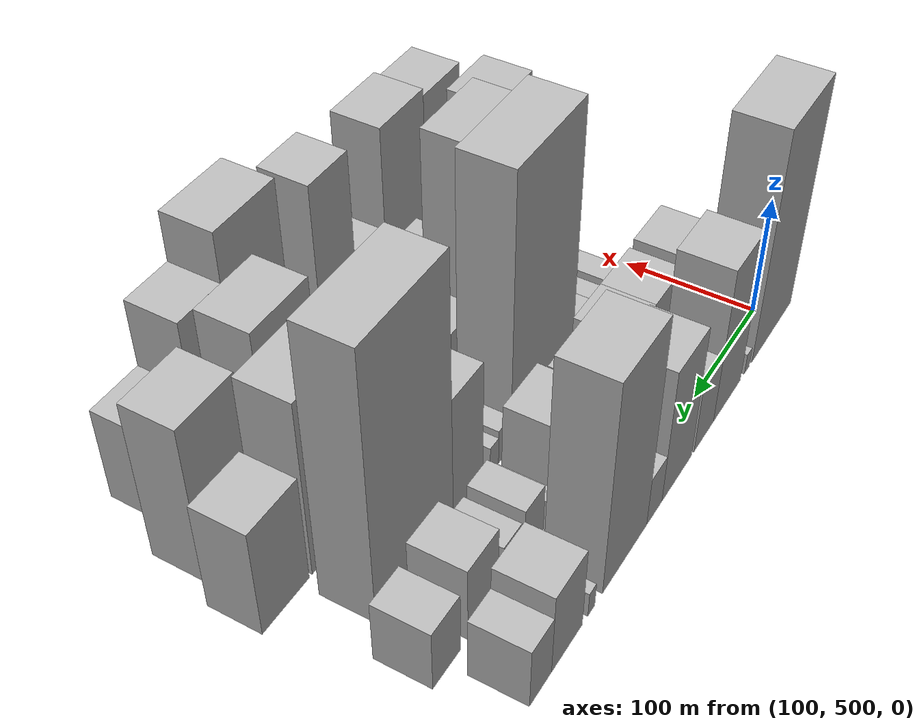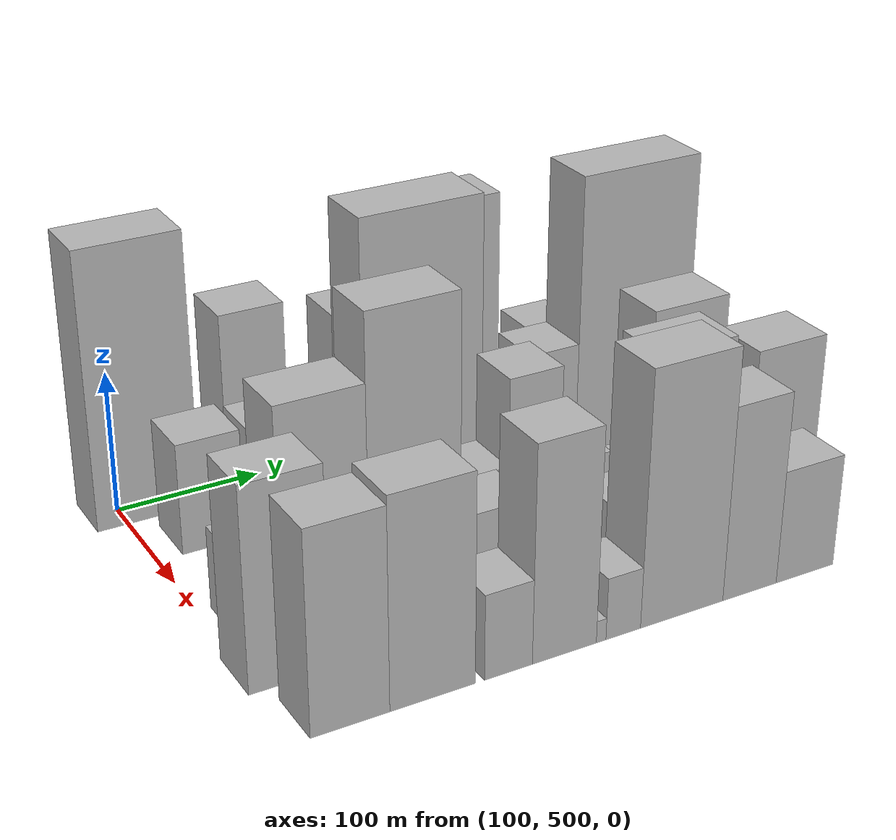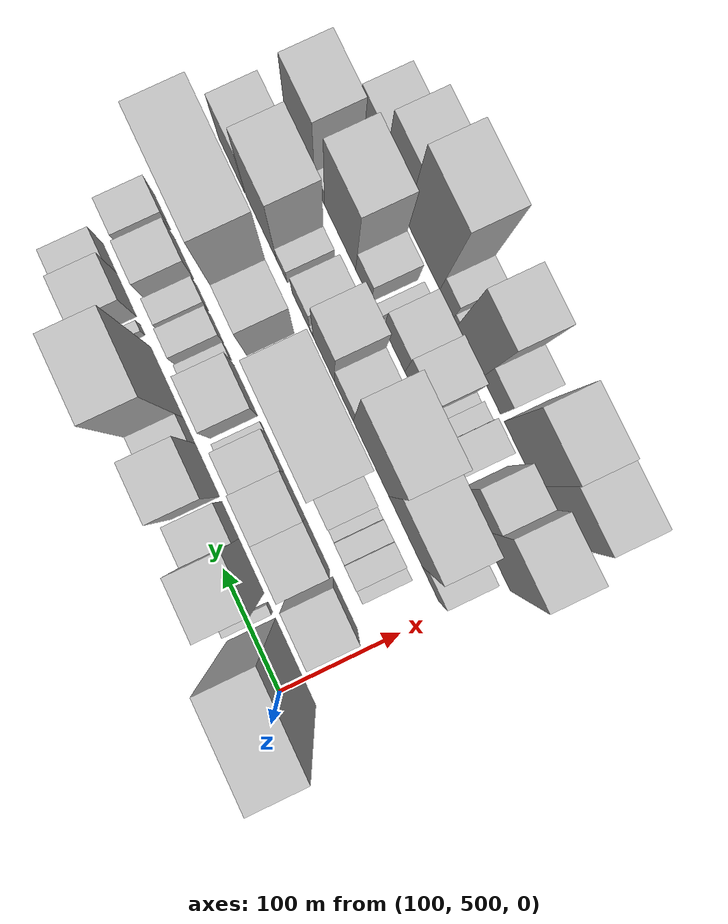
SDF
<sdf version="1.6">
 <world name="default">
  <model name="building_40">
   <static>1</static>
   <pose>100.0000 514.5314 0 0.000000 0.000000 0.000000</pose>
   <link name="link">
    <pose>0 0 97.50 0 0 0</pose>
    <collision name="collision"><geometry><box><size>40.0000 71.0415 195.0000</size></box></geometry></collision>
    <visual name="visual">
     <cast_shadows>0</cast_shadows>
     <geometry><box><size>40.0000 71.0415 195.0000</size></box></geometry>
     <material>
      <script>
       <uri>model://HANNAS_wall/materials/scripts</uri>
       <uri>model://HANNAS_wall/materials/textures</uri>
       <name>vrc/HANNAS_wall</name>
      </script>
     </material>
    </visual>
   </link>
  </model>
  <model name="building_41">
   <static>1</static>
   <pose>100.0000 559.1861 0 0.000000 0.000000 0.000000</pose>
   <link name="link">
    <pose>0 0 9.00 0 0 0</pose>
    <collision name="collision"><geometry><box><size>40.0000 8.2679 18.0000</size></box></geometry></collision>
    <visual name="visual">
     <cast_shadows>0</cast_shadows>
     <geometry><box><size>40.0000 8.2679 18.0000</size></box></geometry>
     <material>
      <script>
       <uri>model://HANNAS_wall/materials/scripts</uri>
       <uri>model://HANNAS_wall/materials/textures</uri>
       <name>vrc/HANNAS_wall</name>
      </script>
     </material>
    </visual>
   </link>
  </model>
  <model name="building_42">
   <static>1</static>
   <pose>100.0000 592.8223 0 0.000000 0.000000 0.000000</pose>
   <link name="link">
    <pose>0 0 66.00 0 0 0</pose>
    <collision name="collision"><geometry><box><size>40.0000 45.0046 132.0000</size></box></geometry></collision>
    <visual name="visual">
     <cast_shadows>0</cast_shadows>
     <geometry><box><size>40.0000 45.0046 132.0000</size></box></geometry>
     <material>
      <script>
       <uri>model://HANNAS_wall/materials/scripts</uri>
       <uri>model://HANNAS_wall/materials/textures</uri>
       <name>vrc/HANNAS_wall</name>
      </script>
     </material>
    </visual>
   </link>
  </model>
  <model name="building_43">
   <static>1</static>
   <pose>100.0000 630.7465 0 0.000000 0.000000 0.000000</pose>
   <link name="link">
    <pose>0 0 30.00 0 0 0</pose>
    <collision name="collision"><geometry><box><size>40.0000 30.8438 60.0000</size></box></geometry></collision>
    <visual name="visual">
     <cast_shadows>0</cast_shadows>
     <geometry><box><size>40.0000 30.8438 60.0000</size></box></geometry>
     <material>
      <script>
       <uri>model://HANNAS_wall/materials/scripts</uri>
       <uri>model://HANNAS_wall/materials/textures</uri>
       <name>vrc/HANNAS_wall</name>
      </script>
     </material>
    </visual>
   </link>
  </model>
  <model name="building_44">
   <static>1</static>
   <pose>100.0000 672.4647 0 0.000000 0.000000 0.000000</pose>
   <link name="link">
    <pose>0 0 57.00 0 0 0</pose>
    <collision name="collision"><geometry><box><size>40.0000 44.5925 114.0000</size></box></geometry></collision>
    <visual name="visual">
     <cast_shadows>0</cast_shadows>
     <geometry><box><size>40.0000 44.5925 114.0000</size></box></geometry>
     <material>
      <script>
       <uri>model://HANNAS_wall/materials/scripts</uri>
       <uri>model://HANNAS_wall/materials/textures</uri>
       <name>vrc/HANNAS_wall</name>
      </script>
     </material>
    </visual>
   </link>
  </model>
  <model name="building_45">
   <static>1</static>
   <pose>100.0000 705.6764 0 0.000000 0.000000 0.000000</pose>
   <link name="link">
    <pose>0 0 21.00 0 0 0</pose>
    <collision name="collision"><geometry><box><size>40.0000 21.8309 42.0000</size></box></geometry></collision>
    <visual name="visual">
     <cast_shadows>0</cast_shadows>
     <geometry><box><size>40.0000 21.8309 42.0000</size></box></geometry>
     <material>
      <script>
       <uri>model://HANNAS_wall/materials/scripts</uri>
       <uri>model://HANNAS_wall/materials/textures</uri>
       <name>vrc/HANNAS_wall</name>
      </script>
     </material>
    </visual>
   </link>
  </model>
  <model name="building_46">
   <static>1</static>
   <pose>100.0000 746.6059 0 0.000000 0.000000 0.000000</pose>
   <link name="link">
    <pose>0 0 88.50 0 0 0</pose>
    <collision name="collision"><geometry><box><size>40.0000 60.0282 177.0000</size></box></geometry></collision>
    <visual name="visual">
     <cast_shadows>0</cast_shadows>
     <geometry><box><size>40.0000 60.0282 177.0000</size></box></geometry>
     <material>
      <script>
       <uri>model://HANNAS_wall/materials/scripts</uri>
       <uri>model://HANNAS_wall/materials/textures</uri>
       <name>vrc/HANNAS_wall</name>
      </script>
     </material>
    </visual>
   </link>
  </model>
  <model name="building_47">
   <static>1</static>
   <pose>100.0000 791.1034 0 0.000000 0.000000 0.000000</pose>
   <link name="link">
    <pose>0 0 10.50 0 0 0</pose>
    <collision name="collision"><geometry><box><size>40.0000 8.9667 21.0000</size></box></geometry></collision>
    <visual name="visual">
     <cast_shadows>0</cast_shadows>
     <geometry><box><size>40.0000 8.9667 21.0000</size></box></geometry>
     <material>
      <script>
       <uri>model://HANNAS_wall/materials/scripts</uri>
       <uri>model://HANNAS_wall/materials/textures</uri>
       <name>vrc/HANNAS_wall</name>
      </script>
     </material>
    </visual>
   </link>
  </model>
  <model name="building_48">
   <static>1</static>
   <pose>100.0000 821.3512 0 0.000000 0.000000 0.000000</pose>
   <link name="link">
    <pose>0 0 34.50 0 0 0</pose>
    <collision name="collision"><geometry><box><size>40.0000 37.5289 69.0000</size></box></geometry></collision>
    <visual name="visual">
     <cast_shadows>0</cast_shadows>
     <geometry><box><size>40.0000 37.5289 69.0000</size></box></geometry>
     <material>
      <script>
       <uri>model://HANNAS_wall/materials/scripts</uri>
       <uri>model://HANNAS_wall/materials/textures</uri>
       <name>vrc/HANNAS_wall</name>
      </script>
     </material>
    </visual>
   </link>
  </model>
  <model name="building_49">
   <static>1</static>
   <pose>100.0000 852.9213 0 0.000000 0.000000 0.000000</pose>
   <link name="link">
    <pose>0 0 25.50 0 0 0</pose>
    <collision name="collision"><geometry><box><size>40.0000 25.6114 51.0000</size></box></geometry></collision>
    <visual name="visual">
     <cast_shadows>0</cast_shadows>
     <geometry><box><size>40.0000 25.6114 51.0000</size></box></geometry>
     <material>
      <script>
       <uri>model://HANNAS_wall/materials/scripts</uri>
       <uri>model://HANNAS_wall/materials/textures</uri>
       <name>vrc/HANNAS_wall</name>
      </script>
     </material>
    </visual>
   </link>
  </model>
  <model name="building_89">
   <static>1</static>
   <pose>152.0000 537.9058 0 0.000000 0.000000 0.000000</pose>
   <link name="link">
    <pose>0 0 39.00 0 0 0</pose>
    <collision name="collision"><geometry><box><size>40.0000 42.7568 78.0000</size></box></geometry></collision>
    <visual name="visual">
     <cast_shadows>0</cast_shadows>
     <geometry><box><size>40.0000 42.7568 78.0000</size></box></geometry>
     <material>
      <script>
       <uri>model://HANNAS_wall/materials/scripts</uri>
       <uri>model://HANNAS_wall/materials/textures</uri>
       <name>vrc/HANNAS_wall</name>
      </script>
     </material>
    </visual>
   </link>
  </model>
  <model name="building_90">
   <static>1</static>
   <pose>152.0000 586.5328 0 0.000000 0.000000 0.000000</pose>
   <link name="link">
    <pose>0 0 37.50 0 0 0</pose>
    <collision name="collision"><geometry><box><size>40.0000 42.4972 75.0000</size></box></geometry></collision>
    <visual name="visual">
     <cast_shadows>0</cast_shadows>
     <geometry><box><size>40.0000 42.4972 75.0000</size></box></geometry>
     <material>
      <script>
       <uri>model://HANNAS_wall/materials/scripts</uri>
       <uri>model://HANNAS_wall/materials/textures</uri>
       <name>vrc/HANNAS_wall</name>
      </script>
     </material>
    </visual>
   </link>
  </model>
  <model name="building_91">
   <static>1</static>
   <pose>152.0000 626.8800 0 0.000000 0.000000 0.000000</pose>
   <link name="link">
    <pose>0 0 37.50 0 0 0</pose>
    <collision name="collision"><geometry><box><size>40.0000 38.1972 75.0000</size></box></geometry></collision>
    <visual name="visual">
     <cast_shadows>0</cast_shadows>
     <geometry><box><size>40.0000 38.1972 75.0000</size></box></geometry>
     <material>
      <script>
       <uri>model://HANNAS_wall/materials/scripts</uri>
       <uri>model://HANNAS_wall/materials/textures</uri>
       <name>vrc/HANNAS_wall</name>
      </script>
     </material>
    </visual>
   </link>
  </model>
  <model name="building_92">
   <static>1</static>
   <pose>152.0000 662.4352 0 0.000000 0.000000 0.000000</pose>
   <link name="link">
    <pose>0 0 30.00 0 0 0</pose>
    <collision name="collision"><geometry><box><size>40.0000 32.9131 60.0000</size></box></geometry></collision>
    <visual name="visual">
     <cast_shadows>0</cast_shadows>
     <geometry><box><size>40.0000 32.9131 60.0000</size></box></geometry>
     <material>
      <script>
       <uri>model://HANNAS_wall/materials/scripts</uri>
       <uri>model://HANNAS_wall/materials/textures</uri>
       <name>vrc/HANNAS_wall</name>
      </script>
     </material>
    </visual>
   </link>
  </model>
  <model name="building_93">
   <static>1</static>
   <pose>152.0000 683.1166 0 0.000000 0.000000 0.000000</pose>
   <link name="link">
    <pose>0 0 9.00 0 0 0</pose>
    <collision name="collision"><geometry><box><size>40.0000 8.4497 18.0000</size></box></geometry></collision>
    <visual name="visual">
     <cast_shadows>0</cast_shadows>
     <geometry><box><size>40.0000 8.4497 18.0000</size></box></geometry>
     <material>
      <script>
       <uri>model://HANNAS_wall/materials/scripts</uri>
       <uri>model://HANNAS_wall/materials/textures</uri>
       <name>vrc/HANNAS_wall</name>
      </script>
     </material>
    </visual>
   </link>
  </model>
  <model name="building_94">
   <static>1</static>
   <pose>152.0000 714.8985 0 0.000000 0.000000 0.000000</pose>
   <link name="link">
    <pose>0 0 37.50 0 0 0</pose>
    <collision name="collision"><geometry><box><size>40.0000 43.1142 75.0000</size></box></geometry></collision>
    <visual name="visual">
     <cast_shadows>0</cast_shadows>
     <geometry><box><size>40.0000 43.1142 75.0000</size></box></geometry>
     <material>
      <script>
       <uri>model://HANNAS_wall/materials/scripts</uri>
       <uri>model://HANNAS_wall/materials/textures</uri>
       <name>vrc/HANNAS_wall</name>
      </script>
     </material>
    </visual>
   </link>
  </model>
  <model name="building_95">
   <static>1</static>
   <pose>152.0000 746.1056 0 0.000000 0.000000 0.000000</pose>
   <link name="link">
    <pose>0 0 13.50 0 0 0</pose>
    <collision name="collision"><geometry><box><size>40.0000 11.3001 27.0000</size></box></geometry></collision>
    <visual name="visual">
     <cast_shadows>0</cast_shadows>
     <geometry><box><size>40.0000 11.3001 27.0000</size></box></geometry>
     <material>
      <script>
       <uri>model://HANNAS_wall/materials/scripts</uri>
       <uri>model://HANNAS_wall/materials/textures</uri>
       <name>vrc/HANNAS_wall</name>
      </script>
     </material>
    </visual>
   </link>
  </model>
  <model name="building_96">
   <static>1</static>
   <pose>152.0000 766.6454 0 0.000000 0.000000 0.000000</pose>
   <link name="link">
    <pose>0 0 22.50 0 0 0</pose>
    <collision name="collision"><geometry><box><size>40.0000 23.7794 45.0000</size></box></geometry></collision>
    <visual name="visual">
     <cast_shadows>0</cast_shadows>
     <geometry><box><size>40.0000 23.7794 45.0000</size></box></geometry>
     <material>
      <script>
       <uri>model://HANNAS_wall/materials/scripts</uri>
       <uri>model://HANNAS_wall/materials/textures</uri>
       <name>vrc/HANNAS_wall</name>
      </script>
     </material>
    </visual>
   </link>
  </model>
  <model name="building_97">
   <static>1</static>
   <pose>152.0000 793.3147 0 0.000000 0.000000 0.000000</pose>
   <link name="link">
    <pose>0 0 19.50 0 0 0</pose>
    <collision name="collision"><geometry><box><size>40.0000 21.5594 39.0000</size></box></geometry></collision>
    <visual name="visual">
     <cast_shadows>0</cast_shadows>
     <geometry><box><size>40.0000 21.5594 39.0000</size></box></geometry>
     <material>
      <script>
       <uri>model://HANNAS_wall/materials/scripts</uri>
       <uri>model://HANNAS_wall/materials/textures</uri>
       <name>vrc/HANNAS_wall</name>
      </script>
     </material>
    </visual>
   </link>
  </model>
  <model name="building_98">
   <static>1</static>
   <pose>152.0000 827.5543 0 0.000000 0.000000 0.000000</pose>
   <link name="link">
    <pose>0 0 31.50 0 0 0</pose>
    <collision name="collision"><geometry><box><size>40.0000 34.9197 63.0000</size></box></geometry></collision>
    <visual name="visual">
     <cast_shadows>0</cast_shadows>
     <geometry><box><size>40.0000 34.9197 63.0000</size></box></geometry>
     <material>
      <script>
       <uri>model://HANNAS_wall/materials/scripts</uri>
       <uri>model://HANNAS_wall/materials/textures</uri>
       <name>vrc/HANNAS_wall</name>
      </script>
     </material>
    </visual>
   </link>
  </model>
  <model name="building_99">
   <static>1</static>
   <pose>152.0000 868.2518 0 0.000000 0.000000 0.000000</pose>
   <link name="link">
    <pose>0 0 25.50 0 0 0</pose>
    <collision name="collision"><geometry><box><size>40.0000 30.4752 51.0000</size></box></geometry></collision>
    <visual name="visual">
     <cast_shadows>0</cast_shadows>
     <geometry><box><size>40.0000 30.4752 51.0000</size></box></geometry>
     <material>
      <script>
       <uri>model://HANNAS_wall/materials/scripts</uri>
       <uri>model://HANNAS_wall/materials/textures</uri>
       <name>vrc/HANNAS_wall</name>
      </script>
     </material>
    </visual>
   </link>
  </model>
  <model name="building_145">
   <static>1</static>
   <pose>204.0000 540.0612 0 0.000000 0.000000 0.000000</pose>
   <link name="link">
    <pose>0 0 13.50 0 0 0</pose>
    <collision name="collision"><geometry><box><size>40.0000 11.2314 27.0000</size></box></geometry></collision>
    <visual name="visual">
     <cast_shadows>0</cast_shadows>
     <geometry><box><size>40.0000 11.2314 27.0000</size></box></geometry>
     <material>
      <script>
       <uri>model://HANNAS_wall/materials/scripts</uri>
       <uri>model://HANNAS_wall/materials/textures</uri>
       <name>vrc/HANNAS_wall</name>
      </script>
     </material>
    </visual>
   </link>
  </model>
  <model name="building_146">
   <static>1</static>
   <pose>204.0000 555.7243 0 0.000000 0.000000 0.000000</pose>
   <link name="link">
    <pose>0 0 19.50 0 0 0</pose>
    <collision name="collision"><geometry><box><size>40.0000 20.0949 39.0000</size></box></geometry></collision>
    <visual name="visual">
     <cast_shadows>0</cast_shadows>
     <geometry><box><size>40.0000 20.0949 39.0000</size></box></geometry>
     <material>
      <script>
       <uri>model://HANNAS_wall/materials/scripts</uri>
       <uri>model://HANNAS_wall/materials/textures</uri>
       <name>vrc/HANNAS_wall</name>
      </script>
     </material>
    </visual>
   </link>
  </model>
  <model name="building_147">
   <static>1</static>
   <pose>204.0000 574.4951 0 0.000000 0.000000 0.000000</pose>
   <link name="link">
    <pose>0 0 16.50 0 0 0</pose>
    <collision name="collision"><geometry><box><size>40.0000 17.4467 33.0000</size></box></geometry></collision>
    <visual name="visual">
     <cast_shadows>0</cast_shadows>
     <geometry><box><size>40.0000 17.4467 33.0000</size></box></geometry>
     <material>
      <script>
       <uri>model://HANNAS_wall/materials/scripts</uri>
       <uri>model://HANNAS_wall/materials/textures</uri>
       <name>vrc/HANNAS_wall</name>
      </script>
     </material>
    </visual>
   </link>
  </model>
  <model name="building_148">
   <static>1</static>
   <pose>204.0000 588.5521 0 0.000000 0.000000 0.000000</pose>
   <link name="link">
    <pose>0 0 12.00 0 0 0</pose>
    <collision name="collision"><geometry><box><size>40.0000 10.6672 24.0000</size></box></geometry></collision>
    <visual name="visual">
     <cast_shadows>0</cast_shadows>
     <geometry><box><size>40.0000 10.6672 24.0000</size></box></geometry>
     <material>
      <script>
       <uri>model://HANNAS_wall/materials/scripts</uri>
       <uri>model://HANNAS_wall/materials/textures</uri>
       <name>vrc/HANNAS_wall</name>
      </script>
     </material>
    </visual>
   </link>
  </model>
  <model name="building_149">
   <static>1</static>
   <pose>204.0000 606.5459 0 0.000000 0.000000 0.000000</pose>
   <link name="link">
    <pose>0 0 22.50 0 0 0</pose>
    <collision name="collision"><geometry><box><size>40.0000 25.3206 45.0000</size></box></geometry></collision>
    <visual name="visual">
     <cast_shadows>0</cast_shadows>
     <geometry><box><size>40.0000 25.3206 45.0000</size></box></geometry>
     <material>
      <script>
       <uri>model://HANNAS_wall/materials/scripts</uri>
       <uri>model://HANNAS_wall/materials/textures</uri>
       <name>vrc/HANNAS_wall</name>
      </script>
     </material>
    </visual>
   </link>
  </model>
  <model name="building_150">
   <static>1</static>
   <pose>204.0000 661.2460 0 0.000000 0.000000 0.000000</pose>
   <link name="link">
    <pose>0 0 112.50 0 0 0</pose>
    <collision name="collision"><geometry><box><size>40.0000 84.0797 225.0000</size></box></geometry></collision>
    <visual name="visual">
     <cast_shadows>0</cast_shadows>
     <geometry><box><size>40.0000 84.0797 225.0000</size></box></geometry>
     <material>
      <script>
       <uri>model://HANNAS_wall/materials/scripts</uri>
       <uri>model://HANNAS_wall/materials/textures</uri>
       <name>vrc/HANNAS_wall</name>
      </script>
     </material>
    </visual>
   </link>
  </model>
  <model name="building_151">
   <static>1</static>
   <pose>204.0000 711.1900 0 0.000000 0.000000 0.000000</pose>
   <link name="link">
    <pose>0 0 15.00 0 0 0</pose>
    <collision name="collision"><geometry><box><size>40.0000 15.8083 30.0000</size></box></geometry></collision>
    <visual name="visual">
     <cast_shadows>0</cast_shadows>
     <geometry><box><size>40.0000 15.8083 30.0000</size></box></geometry>
     <material>
      <script>
       <uri>model://HANNAS_wall/materials/scripts</uri>
       <uri>model://HANNAS_wall/materials/textures</uri>
       <name>vrc/HANNAS_wall</name>
      </script>
     </material>
    </visual>
   </link>
  </model>
  <model name="building_152">
   <static>1</static>
   <pose>204.0000 724.4413 0 0.000000 0.000000 0.000000</pose>
   <link name="link">
    <pose>0 0 12.00 0 0 0</pose>
    <collision name="collision"><geometry><box><size>40.0000 10.6942 24.0000</size></box></geometry></collision>
    <visual name="visual">
     <cast_shadows>0</cast_shadows>
     <geometry><box><size>40.0000 10.6942 24.0000</size></box></geometry>
     <material>
      <script>
       <uri>model://HANNAS_wall/materials/scripts</uri>
       <uri>model://HANNAS_wall/materials/textures</uri>
       <name>vrc/HANNAS_wall</name>
      </script>
     </material>
    </visual>
   </link>
  </model>
  <model name="building_153">
   <static>1</static>
   <pose>204.0000 756.9131 0 0.000000 0.000000 0.000000</pose>
   <link name="link">
    <pose>0 0 54.00 0 0 0</pose>
    <collision name="collision"><geometry><box><size>40.0000 36.2494 108.0000</size></box></geometry></collision>
    <visual name="visual">
     <cast_shadows>0</cast_shadows>
     <geometry><box><size>40.0000 36.2494 108.0000</size></box></geometry>
     <material>
      <script>
       <uri>model://HANNAS_wall/materials/scripts</uri>
       <uri>model://HANNAS_wall/materials/textures</uri>
       <name>vrc/HANNAS_wall</name>
      </script>
     </material>
    </visual>
   </link>
  </model>
  <model name="building_154">
   <static>1</static>
   <pose>204.0000 818.6888 0 0.000000 0.000000 0.000000</pose>
   <link name="link">
    <pose>0 0 111.00 0 0 0</pose>
    <collision name="collision"><geometry><box><size>40.0000 87.3019 222.0000</size></box></geometry></collision>
    <visual name="visual">
     <cast_shadows>0</cast_shadows>
     <geometry><box><size>40.0000 87.3019 222.0000</size></box></geometry>
     <material>
      <script>
       <uri>model://HANNAS_wall/materials/scripts</uri>
       <uri>model://HANNAS_wall/materials/textures</uri>
       <name>vrc/HANNAS_wall</name>
      </script>
     </material>
    </visual>
   </link>
  </model>
  <model name="building_198">
   <static>1</static>
   <pose>256.0000 523.1234 0 0.000000 0.000000 0.000000</pose>
   <link name="link">
    <pose>0 0 28.50 0 0 0</pose>
    <collision name="collision"><geometry><box><size>40.0000 28.6777 57.0000</size></box></geometry></collision>
    <visual name="visual">
     <cast_shadows>0</cast_shadows>
     <geometry><box><size>40.0000 28.6777 57.0000</size></box></geometry>
     <material>
      <script>
       <uri>model://HANNAS_wall/materials/scripts</uri>
       <uri>model://HANNAS_wall/materials/textures</uri>
       <name>vrc/HANNAS_wall</name>
      </script>
     </material>
    </visual>
   </link>
  </model>
  <model name="building_199">
   <static>1</static>
   <pose>256.0000 566.5325 0 0.000000 0.000000 0.000000</pose>
   <link name="link">
    <pose>0 0 73.50 0 0 0</pose>
    <collision name="collision"><geometry><box><size>40.0000 58.1405 147.0000</size></box></geometry></collision>
    <visual name="visual">
     <cast_shadows>0</cast_shadows>
     <geometry><box><size>40.0000 58.1405 147.0000</size></box></geometry>
     <material>
      <script>
       <uri>model://HANNAS_wall/materials/scripts</uri>
       <uri>model://HANNAS_wall/materials/textures</uri>
       <name>vrc/HANNAS_wall</name>
      </script>
     </material>
    </visual>
   </link>
  </model>
  <model name="building_200">
   <static>1</static>
   <pose>256.0000 627.1328 0 0.000000 0.000000 0.000000</pose>
   <link name="link">
    <pose>0 0 96.00 0 0 0</pose>
    <collision name="collision"><geometry><box><size>40.0000 63.0600 192.0000</size></box></geometry></collision>
    <visual name="visual">
     <cast_shadows>0</cast_shadows>
     <geometry><box><size>40.0000 63.0600 192.0000</size></box></geometry>
     <material>
      <script>
       <uri>model://HANNAS_wall/materials/scripts</uri>
       <uri>model://HANNAS_wall/materials/textures</uri>
       <name>vrc/HANNAS_wall</name>
      </script>
     </material>
    </visual>
   </link>
  </model>
  <model name="building_201">
   <static>1</static>
   <pose>256.0000 675.4517 0 0.000000 0.000000 0.000000</pose>
   <link name="link">
    <pose>0 0 33.00 0 0 0</pose>
    <collision name="collision"><geometry><box><size>40.0000 33.5779 66.0000</size></box></geometry></collision>
    <visual name="visual">
     <cast_shadows>0</cast_shadows>
     <geometry><box><size>40.0000 33.5779 66.0000</size></box></geometry>
     <material>
      <script>
       <uri>model://HANNAS_wall/materials/scripts</uri>
       <uri>model://HANNAS_wall/materials/textures</uri>
       <name>vrc/HANNAS_wall</name>
      </script>
     </material>
    </visual>
   </link>
  </model>
  <model name="building_202">
   <static>1</static>
   <pose>256.0000 711.1408 0 0.000000 0.000000 0.000000</pose>
   <link name="link">
    <pose>0 0 63.00 0 0 0</pose>
    <collision name="collision"><geometry><box><size>40.0000 37.8002 126.0000</size></box></geometry></collision>
    <visual name="visual">
     <cast_shadows>0</cast_shadows>
     <geometry><box><size>40.0000 37.8002 126.0000</size></box></geometry>
     <material>
      <script>
       <uri>model://HANNAS_wall/materials/scripts</uri>
       <uri>model://HANNAS_wall/materials/textures</uri>
       <name>vrc/HANNAS_wall</name>
      </script>
     </material>
    </visual>
   </link>
  </model>
  <model name="building_203">
   <static>1</static>
   <pose>256.0000 733.3620 0 0.000000 0.000000 0.000000</pose>
   <link name="link">
    <pose>0 0 7.50 0 0 0</pose>
    <collision name="collision"><geometry><box><size>40.0000 6.6422 15.0000</size></box></geometry></collision>
    <visual name="visual">
     <cast_shadows>0</cast_shadows>
     <geometry><box><size>40.0000 6.6422 15.0000</size></box></geometry>
     <material>
      <script>
       <uri>model://HANNAS_wall/materials/scripts</uri>
       <uri>model://HANNAS_wall/materials/textures</uri>
       <name>vrc/HANNAS_wall</name>
      </script>
     </material>
    </visual>
   </link>
  </model>
  <model name="building_204">
   <static>1</static>
   <pose>256.0000 752.2696 0 0.000000 0.000000 0.000000</pose>
   <link name="link">
    <pose>0 0 28.50 0 0 0</pose>
    <collision name="collision"><geometry><box><size>40.0000 31.1729 57.0000</size></box></geometry></collision>
    <visual name="visual">
     <cast_shadows>0</cast_shadows>
     <geometry><box><size>40.0000 31.1729 57.0000</size></box></geometry>
     <material>
      <script>
       <uri>model://HANNAS_wall/materials/scripts</uri>
       <uri>model://HANNAS_wall/materials/textures</uri>
       <name>vrc/HANNAS_wall</name>
      </script>
     </material>
    </visual>
   </link>
  </model>
  <model name="building_205">
   <static>1</static>
   <pose>256.0000 786.6644 0 0.000000 0.000000 0.000000</pose>
   <link name="link">
    <pose>0 0 18.00 0 0 0</pose>
    <collision name="collision"><geometry><box><size>40.0000 19.6167 36.0000</size></box></geometry></collision>
    <visual name="visual">
     <cast_shadows>0</cast_shadows>
     <geometry><box><size>40.0000 19.6167 36.0000</size></box></geometry>
     <material>
      <script>
       <uri>model://HANNAS_wall/materials/scripts</uri>
       <uri>model://HANNAS_wall/materials/textures</uri>
       <name>vrc/HANNAS_wall</name>
      </script>
     </material>
    </visual>
   </link>
  </model>
  <model name="building_206">
   <static>1</static>
   <pose>256.0000 824.4032 0 0.000000 0.000000 0.000000</pose>
   <link name="link">
    <pose>0 0 73.50 0 0 0</pose>
    <collision name="collision"><geometry><box><size>40.0000 55.8609 147.0000</size></box></geometry></collision>
    <visual name="visual">
     <cast_shadows>0</cast_shadows>
     <geometry><box><size>40.0000 55.8609 147.0000</size></box></geometry>
     <material>
      <script>
       <uri>model://HANNAS_wall/materials/scripts</uri>
       <uri>model://HANNAS_wall/materials/textures</uri>
       <name>vrc/HANNAS_wall</name>
      </script>
     </material>
    </visual>
   </link>
  </model>
  <model name="building_207">
   <static>1</static>
   <pose>256.0000 878.8407 0 0.000000 0.000000 0.000000</pose>
   <link name="link">
    <pose>0 0 45.00 0 0 0</pose>
    <collision name="collision"><geometry><box><size>40.0000 47.0142 90.0000</size></box></geometry></collision>
    <visual name="visual">
     <cast_shadows>0</cast_shadows>
     <geometry><box><size>40.0000 47.0142 90.0000</size></box></geometry>
     <material>
      <script>
       <uri>model://HANNAS_wall/materials/scripts</uri>
       <uri>model://HANNAS_wall/materials/textures</uri>
       <name>vrc/HANNAS_wall</name>
      </script>
     </material>
    </visual>
   </link>
  </model>
  <model name="building_248">
   <static>1</static>
   <pose>308.0000 518.1104 0 0.000000 0.000000 0.000000</pose>
   <link name="link">
    <pose>0 0 67.50 0 0 0</pose>
    <collision name="collision"><geometry><box><size>40.0000 50.5479 135.0000</size></box></geometry></collision>
    <visual name="visual">
     <cast_shadows>0</cast_shadows>
     <geometry><box><size>40.0000 50.5479 135.0000</size></box></geometry>
     <material>
      <script>
       <uri>model://HANNAS_wall/materials/scripts</uri>
       <uri>model://HANNAS_wall/materials/textures</uri>
       <name>vrc/HANNAS_wall</name>
      </script>
     </material>
    </visual>
   </link>
  </model>
  <model name="building_249">
   <static>1</static>
   <pose>308.0000 560.4203 0 0.000000 0.000000 0.000000</pose>
   <link name="link">
    <pose>0 0 48.00 0 0 0</pose>
    <collision name="collision"><geometry><box><size>40.0000 34.0718 96.0000</size></box></geometry></collision>
    <visual name="visual">
     <cast_shadows>0</cast_shadows>
     <geometry><box><size>40.0000 34.0718 96.0000</size></box></geometry>
     <material>
      <script>
       <uri>model://HANNAS_wall/materials/scripts</uri>
       <uri>model://HANNAS_wall/materials/textures</uri>
       <name>vrc/HANNAS_wall</name>
      </script>
     </material>
    </visual>
   </link>
  </model>
  <model name="building_250">
   <static>1</static>
   <pose>308.0000 600.2088 0 0.000000 0.000000 0.000000</pose>
   <link name="link">
    <pose>0 0 25.50 0 0 0</pose>
    <collision name="collision"><geometry><box><size>40.0000 27.5054 51.0000</size></box></geometry></collision>
    <visual name="visual">
     <cast_shadows>0</cast_shadows>
     <geometry><box><size>40.0000 27.5054 51.0000</size></box></geometry>
     <material>
      <script>
       <uri>model://HANNAS_wall/materials/scripts</uri>
       <uri>model://HANNAS_wall/materials/textures</uri>
       <name>vrc/HANNAS_wall</name>
      </script>
     </material>
    </visual>
   </link>
  </model>
  <model name="building_251">
   <static>1</static>
   <pose>308.0000 621.5898 0 0.000000 0.000000 0.000000</pose>
   <link name="link">
    <pose>0 0 15.00 0 0 0</pose>
    <collision name="collision"><geometry><box><size>40.0000 15.2565 30.0000</size></box></geometry></collision>
    <visual name="visual">
     <cast_shadows>0</cast_shadows>
     <geometry><box><size>40.0000 15.2565 30.0000</size></box></geometry>
     <material>
      <script>
       <uri>model://HANNAS_wall/materials/scripts</uri>
       <uri>model://HANNAS_wall/materials/textures</uri>
       <name>vrc/HANNAS_wall</name>
      </script>
     </material>
    </visual>
   </link>
  </model>
  <model name="building_252">
   <static>1</static>
   <pose>308.0000 633.6505 0 0.000000 0.000000 0.000000</pose>
   <link name="link">
    <pose>0 0 9.00 0 0 0</pose>
    <collision name="collision"><geometry><box><size>40.0000 8.8650 18.0000</size></box></geometry></collision>
    <visual name="visual">
     <cast_shadows>0</cast_shadows>
     <geometry><box><size>40.0000 8.8650 18.0000</size></box></geometry>
     <material>
      <script>
       <uri>model://HANNAS_wall/materials/scripts</uri>
       <uri>model://HANNAS_wall/materials/textures</uri>
       <name>vrc/HANNAS_wall</name>
      </script>
     </material>
    </visual>
   </link>
  </model>
  <model name="building_253">
   <static>1</static>
   <pose>308.0000 657.0427 0 0.000000 0.000000 0.000000</pose>
   <link name="link">
    <pose>0 0 37.50 0 0 0</pose>
    <collision name="collision"><geometry><box><size>40.0000 37.9195 75.0000</size></box></geometry></collision>
    <visual name="visual">
     <cast_shadows>0</cast_shadows>
     <geometry><box><size>40.0000 37.9195 75.0000</size></box></geometry>
     <material>
      <script>
       <uri>model://HANNAS_wall/materials/scripts</uri>
       <uri>model://HANNAS_wall/materials/textures</uri>
       <name>vrc/HANNAS_wall</name>
      </script>
     </material>
    </visual>
   </link>
  </model>
  <model name="building_254">
   <static>1</static>
   <pose>308.0000 694.8770 0 0.000000 0.000000 0.000000</pose>
   <link name="link">
    <pose>0 0 33.00 0 0 0</pose>
    <collision name="collision"><geometry><box><size>40.0000 37.7490 66.0000</size></box></geometry></collision>
    <visual name="visual">
     <cast_shadows>0</cast_shadows>
     <geometry><box><size>40.0000 37.7490 66.0000</size></box></geometry>
     <material>
      <script>
       <uri>model://HANNAS_wall/materials/scripts</uri>
       <uri>model://HANNAS_wall/materials/textures</uri>
       <name>vrc/HANNAS_wall</name>
      </script>
     </material>
    </visual>
   </link>
  </model>
  <model name="building_255">
   <static>1</static>
   <pose>308.0000 723.8777 0 0.000000 0.000000 0.000000</pose>
   <link name="link">
    <pose>0 0 12.00 0 0 0</pose>
    <collision name="collision"><geometry><box><size>40.0000 10.2525 24.0000</size></box></geometry></collision>
    <visual name="visual">
     <cast_shadows>0</cast_shadows>
     <geometry><box><size>40.0000 10.2525 24.0000</size></box></geometry>
     <material>
      <script>
       <uri>model://HANNAS_wall/materials/scripts</uri>
       <uri>model://HANNAS_wall/materials/textures</uri>
       <name>vrc/HANNAS_wall</name>
      </script>
     </material>
    </visual>
   </link>
  </model>
  <model name="building_256">
   <static>1</static>
   <pose>308.0000 749.8511 0 0.000000 0.000000 0.000000</pose>
   <link name="link">
    <pose>0 0 25.50 0 0 0</pose>
    <collision name="collision"><geometry><box><size>40.0000 27.6942 51.0000</size></box></geometry></collision>
    <visual name="visual">
     <cast_shadows>0</cast_shadows>
     <geometry><box><size>40.0000 27.6942 51.0000</size></box></geometry>
     <material>
      <script>
       <uri>model://HANNAS_wall/materials/scripts</uri>
       <uri>model://HANNAS_wall/materials/textures</uri>
       <name>vrc/HANNAS_wall</name>
      </script>
     </material>
    </visual>
   </link>
  </model>
  <model name="building_257">
   <static>1</static>
   <pose>308.0000 791.8852 0 0.000000 0.000000 0.000000</pose>
   <link name="link">
    <pose>0 0 73.50 0 0 0</pose>
    <collision name="collision"><geometry><box><size>40.0000 56.3741 147.0000</size></box></geometry></collision>
    <visual name="visual">
     <cast_shadows>0</cast_shadows>
     <geometry><box><size>40.0000 56.3741 147.0000</size></box></geometry>
     <material>
      <script>
       <uri>model://HANNAS_wall/materials/scripts</uri>
       <uri>model://HANNAS_wall/materials/textures</uri>
       <name>vrc/HANNAS_wall</name>
      </script>
     </material>
    </visual>
   </link>
  </model>
  <model name="building_258">
   <static>1</static>
   <pose>308.0000 828.7820 0 0.000000 0.000000 0.000000</pose>
   <link name="link">
    <pose>0 0 16.50 0 0 0</pose>
    <collision name="collision"><geometry><box><size>40.0000 17.4196 33.0000</size></box></geometry></collision>
    <visual name="visual">
     <cast_shadows>0</cast_shadows>
     <geometry><box><size>40.0000 17.4196 33.0000</size></box></geometry>
     <material>
      <script>
       <uri>model://HANNAS_wall/materials/scripts</uri>
       <uri>model://HANNAS_wall/materials/textures</uri>
       <name>vrc/HANNAS_wall</name>
      </script>
     </material>
    </visual>
   </link>
  </model>
  <model name="building_259">
   <static>1</static>
   <pose>308.0000 863.3975 0 0.000000 0.000000 0.000000</pose>
   <link name="link">
    <pose>0 0 66.00 0 0 0</pose>
    <collision name="collision"><geometry><box><size>40.0000 51.8114 132.0000</size></box></geometry></collision>
    <visual name="visual">
     <cast_shadows>0</cast_shadows>
     <geometry><box><size>40.0000 51.8114 132.0000</size></box></geometry>
     <material>
      <script>
       <uri>model://HANNAS_wall/materials/scripts</uri>
       <uri>model://HANNAS_wall/materials/textures</uri>
       <name>vrc/HANNAS_wall</name>
      </script>
     </material>
    </visual>
   </link>
  </model>
  <model name="building_300">
   <static>1</static>
   <pose>360.0000 530.4611 0 0.000000 0.000000 0.000000</pose>
   <link name="link">
    <pose>0 0 66.00 0 0 0</pose>
    <collision name="collision"><geometry><box><size>40.0000 48.6735 132.0000</size></box></geometry></collision>
    <visual name="visual">
     <cast_shadows>0</cast_shadows>
     <geometry><box><size>40.0000 48.6735 132.0000</size></box></geometry>
     <material>
      <script>
       <uri>model://HANNAS_wall/materials/scripts</uri>
       <uri>model://HANNAS_wall/materials/textures</uri>
       <name>vrc/HANNAS_wall</name>
      </script>
     </material>
    </visual>
   </link>
  </model>
  <model name="building_301">
   <static>1</static>
   <pose>360.0000 582.0130 0 0.000000 0.000000 0.000000</pose>
   <link name="link">
    <pose>0 0 69.00 0 0 0</pose>
    <collision name="collision"><geometry><box><size>40.0000 54.4303 138.0000</size></box></geometry></collision>
    <visual name="visual">
     <cast_shadows>0</cast_shadows>
     <geometry><box><size>40.0000 54.4303 138.0000</size></box></geometry>
     <material>
      <script>
       <uri>model://HANNAS_wall/materials/scripts</uri>
       <uri>model://HANNAS_wall/materials/textures</uri>
       <name>vrc/HANNAS_wall</name>
      </script>
     </material>
    </visual>
   </link>
  </model>
  <model name="building_302">
   <static>1</static>
   <pose>360.0000 631.0882 0 0.000000 0.000000 0.000000</pose>
   <link name="link">
    <pose>0 0 28.50 0 0 0</pose>
    <collision name="collision"><geometry><box><size>40.0000 31.7201 57.0000</size></box></geometry></collision>
    <visual name="visual">
     <cast_shadows>0</cast_shadows>
     <geometry><box><size>40.0000 31.7201 57.0000</size></box></geometry>
     <material>
      <script>
       <uri>model://HANNAS_wall/materials/scripts</uri>
       <uri>model://HANNAS_wall/materials/textures</uri>
       <name>vrc/HANNAS_wall</name>
      </script>
     </material>
    </visual>
   </link>
  </model>
  <model name="building_303">
   <static>1</static>
   <pose>360.0000 668.8309 0 0.000000 0.000000 0.000000</pose>
   <link name="link">
    <pose>0 0 72.00 0 0 0</pose>
    <collision name="collision"><geometry><box><size>40.0000 43.7654 144.0000</size></box></geometry></collision>
    <visual name="visual">
     <cast_shadows>0</cast_shadows>
     <geometry><box><size>40.0000 43.7654 144.0000</size></box></geometry>
     <material>
      <script>
       <uri>model://HANNAS_wall/materials/scripts</uri>
       <uri>model://HANNAS_wall/materials/textures</uri>
       <name>vrc/HANNAS_wall</name>
      </script>
     </material>
    </visual>
   </link>
  </model>
  <model name="building_304">
   <static>1</static>
   <pose>360.0000 694.0509 0 0.000000 0.000000 0.000000</pose>
   <link name="link">
    <pose>0 0 7.50 0 0 0</pose>
    <collision name="collision"><geometry><box><size>40.0000 6.6745 15.0000</size></box></geometry></collision>
    <visual name="visual">
     <cast_shadows>0</cast_shadows>
     <geometry><box><size>40.0000 6.6745 15.0000</size></box></geometry>
     <material>
      <script>
       <uri>model://HANNAS_wall/materials/scripts</uri>
       <uri>model://HANNAS_wall/materials/textures</uri>
       <name>vrc/HANNAS_wall</name>
      </script>
     </material>
    </visual>
   </link>
  </model>
  <model name="building_305">
   <static>1</static>
   <pose>360.0000 709.5860 0 0.000000 0.000000 0.000000</pose>
   <link name="link">
    <pose>0 0 21.00 0 0 0</pose>
    <collision name="collision"><geometry><box><size>40.0000 24.3957 42.0000</size></box></geometry></collision>
    <visual name="visual">
     <cast_shadows>0</cast_shadows>
     <geometry><box><size>40.0000 24.3957 42.0000</size></box></geometry>
     <material>
      <script>
       <uri>model://HANNAS_wall/materials/scripts</uri>
       <uri>model://HANNAS_wall/materials/textures</uri>
       <name>vrc/HANNAS_wall</name>
      </script>
     </material>
    </visual>
   </link>
  </model>
  <model name="building_306">
   <static>1</static>
   <pose>360.0000 751.8294 0 0.000000 0.000000 0.000000</pose>
   <link name="link">
    <pose>0 0 85.50 0 0 0</pose>
    <collision name="collision"><geometry><box><size>40.0000 60.0911 171.0000</size></box></geometry></collision>
    <visual name="visual">
     <cast_shadows>0</cast_shadows>
     <geometry><box><size>40.0000 60.0911 171.0000</size></box></geometry>
     <material>
      <script>
       <uri>model://HANNAS_wall/materials/scripts</uri>
       <uri>model://HANNAS_wall/materials/textures</uri>
       <name>vrc/HANNAS_wall</name>
      </script>
     </material>
    </visual>
   </link>
  </model>
  <model name="building_307">
   <static>1</static>
   <pose>360.0000 802.1121 0 0.000000 0.000000 0.000000</pose>
   <link name="link">
    <pose>0 0 66.00 0 0 0</pose>
    <collision name="collision"><geometry><box><size>40.0000 40.4744 132.0000</size></box></geometry></collision>
    <visual name="visual">
     <cast_shadows>0</cast_shadows>
     <geometry><box><size>40.0000 40.4744 132.0000</size></box></geometry>
     <material>
      <script>
       <uri>model://HANNAS_wall/materials/scripts</uri>
       <uri>model://HANNAS_wall/materials/textures</uri>
       <name>vrc/HANNAS_wall</name>
      </script>
     </material>
    </visual>
   </link>
  </model>
  <model name="building_308">
   <static>1</static>
   <pose>360.0000 844.4854 0 0.000000 0.000000 0.000000</pose>
   <link name="link">
    <pose>0 0 39.00 0 0 0</pose>
    <collision name="collision"><geometry><box><size>40.0000 44.2722 78.0000</size></box></geometry></collision>
    <visual name="visual">
     <cast_shadows>0</cast_shadows>
     <geometry><box><size>40.0000 44.2722 78.0000</size></box></geometry>
     <material>
      <script>
       <uri>model://HANNAS_wall/materials/scripts</uri>
       <uri>model://HANNAS_wall/materials/textures</uri>
       <name>vrc/HANNAS_wall</name>
      </script>
     </material>
    </visual>
   </link>
  </model>
 </world>
</sdf>
